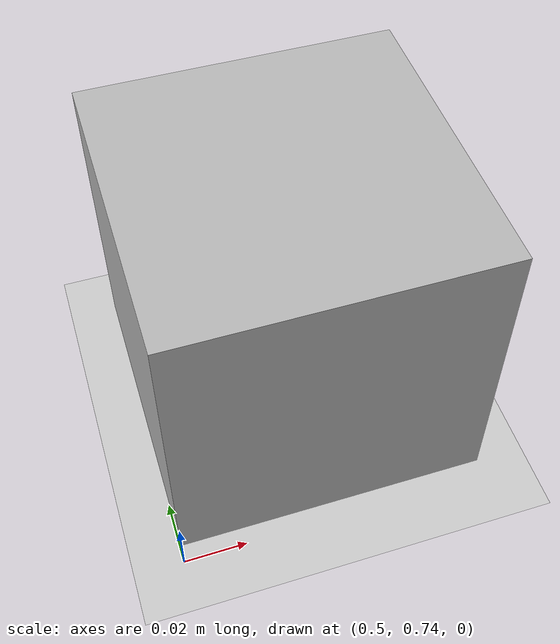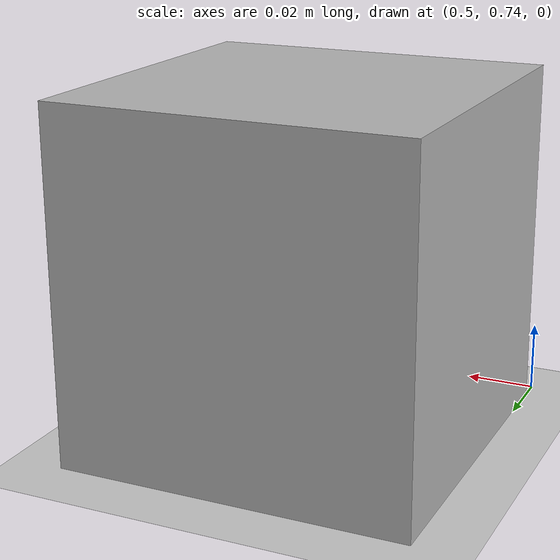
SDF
<sdf version="1.4">
 <world name="default">
  <light name="sun" type="directional">
   <pose>0 0 10 0 -0 0</pose>
   <diffuse>0.8 0.8 0.8 1</diffuse>
   <specular>0.2 0.2 0.2 1</specular>
   <attenuation>
    <range>1000</range>
    <constant>0.9</constant>
    <linear>0.01</linear>
    <quadratic>0.001</quadratic>
   </attenuation>
   <direction>-0.5 0.1 -0.9</direction>
  </light>
  <model name="ground_plane">
   <static>1</static>
   <link name="link">
    <collision name="collision">
     <geometry><plane><normal>0 0 1</normal><size>100 100</size></plane></geometry>
     <surface><friction><ode><mu>100</mu><mu2>50</mu2></ode></friction></surface>
    </collision>
    <visual name="visual">
     <cast_shadows>0</cast_shadows>
     <geometry><plane><normal>0 0 1</normal><size>100 100</size></plane></geometry>
     <material>
      <script><uri>file://media/materials/scripts/gazebo.material</uri><name>Gazebo/Grey</name></script>
     </material>
    </visual>
    <velocity_decay><linear>0</linear><angular>0</angular></velocity_decay>
   </link>
  </model>
  <physics type="ode">
   <max_step_size>0.001</max_step_size>
   <real_time_factor>1</real_time_factor>
   <real_time_update_rate>1000</real_time_update_rate>
   <gravity>0 0 -9.8</gravity>
  </physics>
  <scene><ambient>0.4 0.4 0.4 1</ambient><background>0.7 0.7 0.7 1</background><shadows>1</shadows></scene>
  <model name="camera">
   <link name="link">
    <pose>0.05 0.05 0.05 0 -0 0</pose>
    <inertial>
     <mass>0.1</mass>
     <inertia><ixx>1</ixx><ixy>0</ixy><ixz>0</ixz><iyy>1</iyy><iyz>0</iyz><izz>1</izz></inertia>
    </inertial>
    <collision name="collision"><geometry><box><size>0.1 0.1 0.1</size></box></geometry></collision>
    <visual name="visual"><geometry><box><size>0.1 0.1 0.1</size></box></geometry></visual>
    <sensor name="camera" type="camera">
     <camera name="__default__">
      <horizontal_fov>1.047</horizontal_fov>
      <image><width>320</width><height>240</height></image>
      <clip><near>0.1</near><far>100</far></clip>
     </camera>
     <always_on>1</always_on>
     <update_rate>30</update_rate>
     <visualize>1</visualize>
    </sensor>
    <velocity_decay><linear>0</linear><angular>0</angular></velocity_decay>
   </link>
   <pose>0.500152 0.745459 0 -3e-06 -7e-06 -1.6e-05</pose>
   <static>0</static>
  </model>
 </world>
</sdf>
